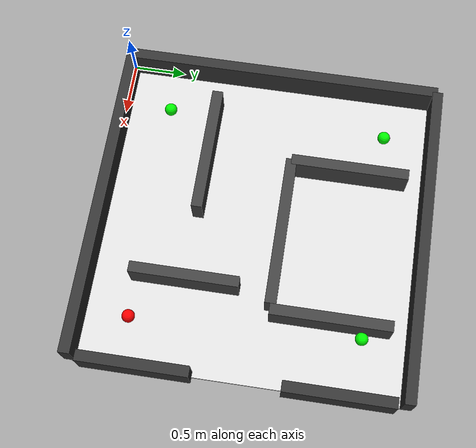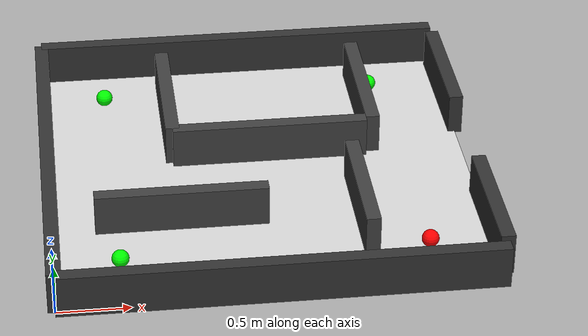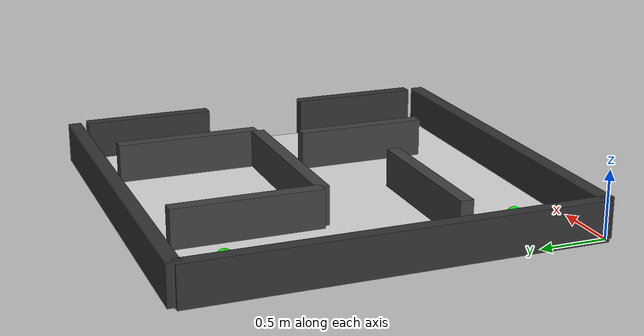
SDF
<?xml version="1.0" ?>
<sdf version="1.9">
  <world name="maze_world">

    <gravity>0 0 -9.8</gravity>

    <!-- Обязательная система сенсоров для камеры -->
    <plugin filename="gz-sim-physics-system" name="gz::sim::systems::Physics"/>
    <plugin filename="gz-sim-user-commands-system" name="gz::sim::systems::UserCommands"/>
    <plugin filename="gz-sim-scene-broadcaster-system" name="gz::sim::systems::SceneBroadcaster"/>
    <plugin filename="gz-sim-sensors-system" name="gz::sim::systems::Sensors"/>

    <!-- Освещение -->
    <light type="directional" name="sun">
      <pose>0 0 10 0 0 0</pose>
      <diffuse>0.8 0.8 0.8 1</diffuse>
      <specular>0.2 0.2 0.2 1</specular>
      <direction>0 0 -1</direction>
      <cast_shadows>true</cast_shadows>
    </light>

    <!-- Пол -->
    <model name="floor">
      <static>true</static>
      <pose>1.5 1.5 0 0 0 0</pose>
      <link name="floor_link">
        <visual name="visual">
          <geometry>
            <box>
              <size>3.0 3.0 0.02</size>
            </box>
          </geometry>
          <material>
            <ambient>0.85 0.85 0.85 1</ambient>
            <diffuse>0.85 0.85 0.85 1</diffuse>
          </material>
        </visual>
        <collision name="collision">
          <geometry>
            <box>
              <size>3.0 3.0 0.02</size>
            </box>
          </geometry>
        </collision>
      </link>
    </model>

    <!-- Внешние стены -->
    <model name="wall_bottom">
      <static>true</static>
      <pose>1.5 0.0 0.15 0 0 0</pose>
      <link name="link">
        <visual name="visual">
          <geometry>
            <box>
              <size>3.0 0.1 0.3</size>
            </box>
          </geometry>
          <material>
            <ambient>0.2 0.2 0.2 1</ambient>
            <diffuse>0.2 0.2 0.2 1</diffuse>
          </material>
        </visual>
        <collision name="collision">
          <geometry>
            <box>
              <size>3.0 0.1 0.3</size>
            </box>
          </geometry>
        </collision>
      </link>
    </model>

    <model name="wall_top">
      <static>true</static>
      <pose>1.5 3.0 0.15 0 0 0</pose>
      <link name="link">
        <visual name="visual">
          <geometry>
            <box>
              <size>3.0 0.1 0.3</size>
            </box>
          </geometry>
          <material>
            <ambient>0.2 0.2 0.2 1</ambient>
            <diffuse>0.2 0.2 0.2 1</diffuse>
          </material>
        </visual>
        <collision name="collision">
          <geometry>
            <box>
              <size>3.0 0.1 0.3</size>
            </box>
          </geometry>
        </collision>
      </link>
    </model>

    <model name="wall_left">
      <static>true</static>
      <pose>0.0 1.5 0.15 0 0 0</pose>
      <link name="link">
        <visual name="visual">
          <geometry>
            <box>
              <size>0.1 3.0 0.3</size>
            </box>
          </geometry>
          <material>
            <ambient>0.2 0.2 0.2 1</ambient>
            <diffuse>0.2 0.2 0.2 1</diffuse>
          </material>
        </visual>
        <collision name="collision">
          <geometry>
            <box>
              <size>0.1 3.0 0.3</size>
            </box>
          </geometry>
        </collision>
      </link>
    </model>

    <!-- Правая стена с выходом -->
    <model name="wall_right_bottom">
      <static>true</static>
      <pose>3.0 0.60 0.15 0 0 0</pose>
      <link name="link">
        <visual name="visual">
          <geometry>
            <box>
              <size>0.1 1.0 0.3</size>
            </box>
          </geometry>
          <material>
            <ambient>0.2 0.2 0.2 1</ambient>
            <diffuse>0.2 0.2 0.2 1</diffuse>
          </material>
        </visual>
        <collision name="collision">
          <geometry>
            <box>
              <size>0.1 1.0 0.3</size>
            </box>
          </geometry>
        </collision>
      </link>
    </model>

    <model name="wall_right_top">
      <static>true</static>
      <pose>3.0 2.40 0.15 0 0 0</pose>
      <link name="link">
        <visual name="visual">
          <geometry>
            <box>
              <size>0.1 1.0 0.3</size>
            </box>
          </geometry>
          <material>
            <ambient>0.2 0.2 0.2 1</ambient>
            <diffuse>0.2 0.2 0.2 1</diffuse>
          </material>
        </visual>
        <collision name="collision">
          <geometry>
            <box>
              <size>0.1 1.0 0.3</size>
            </box>
          </geometry>
        </collision>
      </link>
    </model>

    <!-- Внутренние перегородки -->
    <model name="inner1">
      <static>true</static>
      <pose>0.9 0.9 0.15 0 0 0</pose>
      <link name="link">
        <visual name="visual">
          <geometry>
            <box>
              <size>1.2 0.1 0.3</size>
            </box>
          </geometry>
          <material>
            <ambient>0.25 0.25 0.25 1</ambient>
            <diffuse>0.25 0.25 0.25 1</diffuse>
          </material>
        </visual>
        <collision name="collision">
          <geometry>
            <box>
              <size>1.2 0.1 0.3</size>
            </box>
          </geometry>
        </collision>
      </link>
    </model>

    <model name="inner2">
      <static>true</static>
      <pose>2.15 0.9 0.15 0 0 1.5708</pose>
      <link name="link">
        <visual name="visual">
          <geometry>
            <box>
              <size>1.0 0.1 0.3</size>
            </box>
          </geometry>
          <material>
            <ambient>0.25 0.25 0.25 1</ambient>
            <diffuse>0.25 0.25 0.25 1</diffuse>
          </material>
        </visual>
        <collision name="collision">
          <geometry>
            <box>
              <size>1.0 0.1 0.3</size>
            </box>
          </geometry>
        </collision>
      </link>
    </model>

    <model name="inner3">
      <static>true</static>
      <pose>1.6 1.7 0.15 0 0 0</pose>
      <link name="link">
        <visual name="visual">
          <geometry>
            <box>
              <size>1.4 0.1 0.3</size>
            </box>
          </geometry>
          <material>
            <ambient>0.25 0.25 0.25 1</ambient>
            <diffuse>0.25 0.25 0.25 1</diffuse>
          </material>
        </visual>
        <collision name="collision">
          <geometry>
            <box>
              <size>1.4 0.1 0.3</size>
            </box>
          </geometry>
        </collision>
      </link>
    </model>

    <model name="inner4">
      <static>true</static>
      <pose>0.9 2.25 0.15 0 0 1.5708</pose>
      <link name="link">
        <visual name="visual">
          <geometry>
            <box>
              <size>1.1 0.1 0.3</size>
            </box>
          </geometry>
          <material>
            <ambient>0.25 0.25 0.25 1</ambient>
            <diffuse>0.25 0.25 0.25 1</diffuse>
          </material>
        </visual>
        <collision name="collision">
          <geometry>
            <box>
              <size>1.1 0.1 0.3</size>
            </box>
          </geometry>
        </collision>
      </link>
    </model>

    <model name="inner5">
      <static>true</static>
      <pose>2.35 2.25 0.15 0 0 1.5708</pose>
      <link name="link">
        <visual name="visual">
          <geometry>
            <box>
              <size>1.1 0.1 0.3</size>
            </box>
          </geometry>
          <material>
            <ambient>0.25 0.25 0.25 1</ambient>
            <diffuse>0.25 0.25 0.25 1</diffuse>
          </material>
        </visual>
        <collision name="collision">
          <geometry>
            <box>
              <size>1.1 0.1 0.3</size>
            </box>
          </geometry>
        </collision>
      </link>
    </model>

    <!-- Красный шар -->
    <model name="red_ball">
      <static>true</static>
      <pose>2.55 0.45 0.08 0 0 0</pose>
      <link name="link">
        <visual name="visual">
          <geometry>
            <sphere>
              <radius>0.06</radius>
            </sphere>
          </geometry>
          <material>
            <ambient>1 0 0 1</ambient>
            <diffuse>1 0 0 1</diffuse>
          </material>
        </visual>
        <collision name="collision">
          <geometry>
            <sphere>
              <radius>0.06</radius>
            </sphere>
          </geometry>
        </collision>
      </link>
    </model>

    <!-- Зеленые шары -->
    <model name="green_ball1">
      <static>true</static>
      <pose>0.45 0.45 0.08 0 0 0</pose>
      <link name="link">
        <visual name="visual">
          <geometry>
            <sphere>
              <radius>0.06</radius>
            </sphere>
          </geometry>
          <material>
            <ambient>0 1 0 1</ambient>
            <diffuse>0 1 0 1</diffuse>
          </material>
        </visual>
        <collision name="collision">
          <geometry>
            <sphere>
              <radius>0.06</radius>
            </sphere>
          </geometry>
        </collision>
      </link>
    </model>

    <model name="green_ball2">
      <static>true</static>
      <pose>0.45 2.55 0.08 0 0 0</pose>
      <link name="link">
        <visual name="visual">
          <geometry>
            <sphere>
              <radius>0.06</radius>
            </sphere>
          </geometry>
          <material>
            <ambient>0 1 0 1</ambient>
            <diffuse>0 1 0 1</diffuse>
          </material>
        </visual>
        <collision name="collision">
          <geometry>
            <sphere>
              <radius>0.06</radius>
            </sphere>
          </geometry>
        </collision>
      </link>
    </model>

    <model name="green_ball3">
      <static>true</static>
      <pose>2.45 2.55 0.08 0 0 0</pose>
      <link name="link">
        <visual name="visual">
          <geometry>
            <sphere>
              <radius>0.06</radius>
            </sphere>
          </geometry>
          <material>
            <ambient>0 1 0 1</ambient>
            <diffuse>0 1 0 1</diffuse>
          </material>
        </visual>
        <collision name="collision">
          <geometry>
            <sphere>
              <radius>0.06</radius>
            </sphere>
          </geometry>
        </collision>
      </link>
    </model>

    <!-- Камера сверху -->
    <model name="top_camera">
      <static>true</static>
      <pose>1.5 1.5 5.0 0 1.5708 0</pose>
      <link name="camera_link">
        <sensor name="top_cam" type="camera">
          <always_on>true</always_on>
          <update_rate>30</update_rate>
          <visualize>true</visualize>
          <topic>/camera</topic>
          <camera>
            <horizontal_fov>1.047</horizontal_fov>
            <image>
              <width>640</width>
              <height>480</height>
              <format>R8G8B8</format>
            </image>
            <clip>
              <near>0.1</near>
              <far>100</far>
            </clip>
          </camera>
        </sensor>
      </link>
    </model>

  </world>
</sdf>
